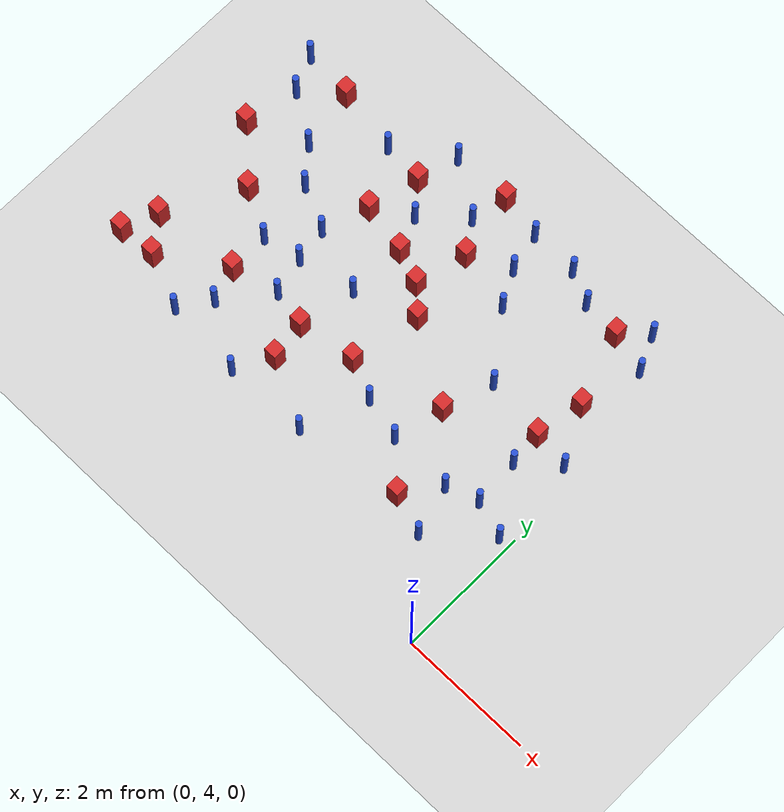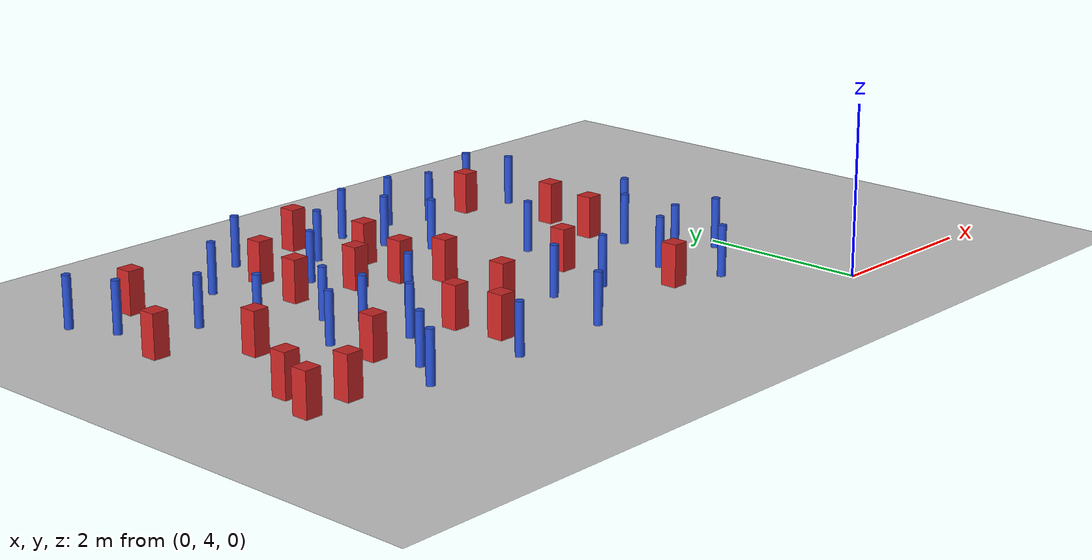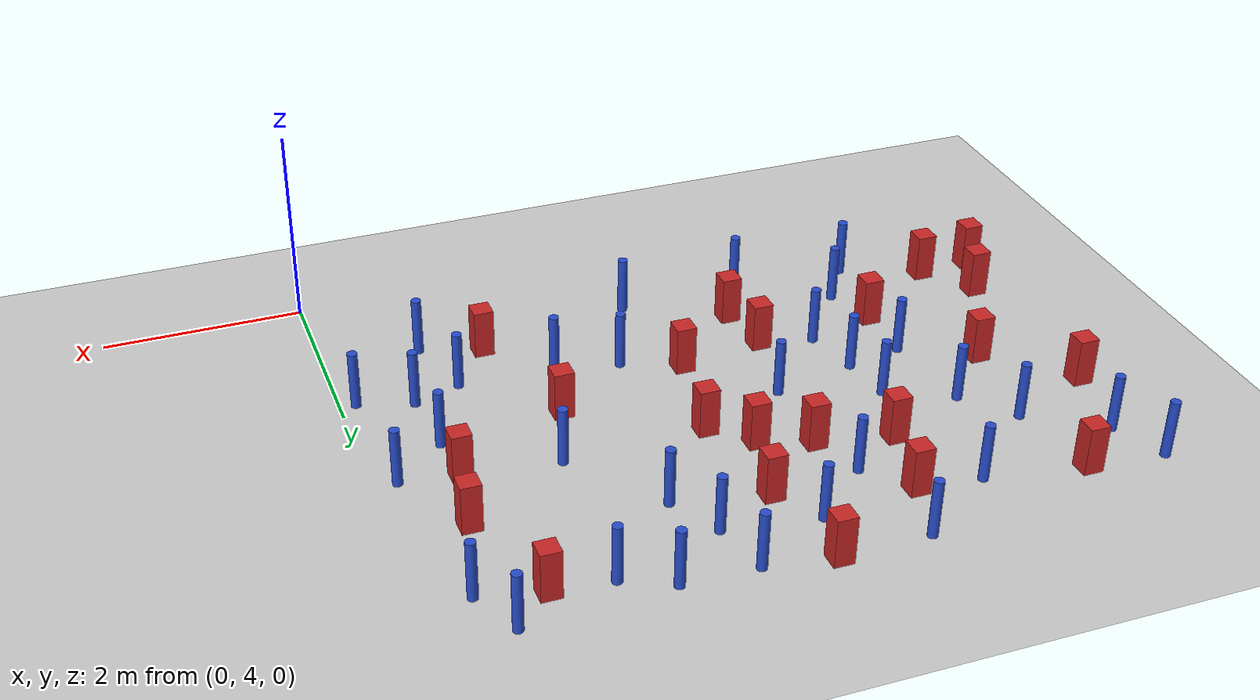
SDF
<sdf version="1.6">
 <world name="default">
  <model name="ground_plane">
   <static>1</static>
   <link name="link">
    <collision name="collision">
     <geometry><plane><normal>0 0 1</normal><size>100 100</size></plane></geometry>
     <surface><friction><ode><mu>100</mu><mu2>50</mu2></ode></friction></surface>
    </collision>
    <visual name="visual">
     <cast_shadows>0</cast_shadows>
     <geometry><plane><normal>0 0 1</normal><size>100 100</size></plane></geometry>
     <material>
      <ambient>1.0 1.0 1.0 1.0</ambient>
      <diffuse>0.8 0.8 0.8 1.0</diffuse>
      <specular>0.01 0.01 0.01 1.000000</specular>
     </material>
    </visual>
   </link>
  </model>
  <model name="square_post_obstacle1">
   <static>true</static>
   <pose>-3.34761404719 6.2799041759 -6.11067671241e-07 -5.50515727128e-06 -8.79689657224e-07 2.37013304536e-05</pose>
   <link name="link">
    <pose>0 0 0.25 0 -0 0</pose>
    <inertial>
     <mass>100</mass>
     <inertia>
      <ixx>0.166667</ixx>
      <ixy>0</ixy>
      <ixz>0</ixz>
      <iyy>0.166667</iyy>
      <iyz>0</iyz>
      <izz>0.166667</izz>
     </inertia>
    </inertial>
    <collision name="collision"><geometry><box><size>.2 .2 .5</size></box></geometry></collision>
    <visual name="visual">
     <geometry><box><size>.2 .2 .5</size></box></geometry>
     <material>
      <script><name>Gazebo/Red</name><uri>file://media/materials/scripts/gazebo.material</uri></script>
     </material>
    </visual>
   </link>
  </model>
  <model name="pole_obstacle0">
   <static>true</static>
   <pose>-2.69258866237 8.78360570163 -9.4761961606e-06 5.49618799729e-07 2.36310414e-07 -1.55090534824e-07</pose>
   <link name="link">
    <pose>0 0 0.3 0 -0 0</pose>
    <inertial>
     <mass>1</mass>
     <inertia><ixx>0.145833</ixx><ixy>0</ixy><ixz>0</ixz><iyy>0.145833</iyy><iyz>0</iyz><izz>0.125</izz></inertia>
    </inertial>
    <collision name="collision">
     <geometry><cylinder><radius>0.05</radius><length>.6</length></cylinder></geometry>
    </collision>
    <visual name="visual">
     <geometry><cylinder><radius>0.05</radius><length>.6</length></cylinder></geometry>
     <material>
      <script><name>Gazebo/Blue</name><uri>file://media/materials/scripts/gazebo.material</uri></script>
     </material>
    </visual>
   </link>
  </model>
  <model name="square_post_obstacle4">
   <static>true</static>
   <pose>-3.31677409163 8.47484214785 -6.11067671241e-07 -5.50515727128e-06 -8.79689657224e-07 2.37013304536e-05</pose>
   <link name="link">
    <pose>0 0 0.25 0 -0 0</pose>
    <inertial>
     <mass>100</mass>
     <inertia>
      <ixx>0.166667</ixx>
      <ixy>0</ixy>
      <ixz>0</ixz>
      <iyy>0.166667</iyy>
      <iyz>0</iyz>
      <izz>0.166667</izz>
     </inertia>
    </inertial>
    <collision name="collision"><geometry><box><size>.2 .2 .5</size></box></geometry></collision>
    <visual name="visual">
     <geometry><box><size>.2 .2 .5</size></box></geometry>
     <material>
      <script><name>Gazebo/Red</name><uri>file://media/materials/scripts/gazebo.material</uri></script>
     </material>
    </visual>
   </link>
  </model>
  <model name="pole_obstacle7">
   <static>true</static>
   <pose>-2.09122257601 9.34044556513 -9.4761961606e-06 5.49618799729e-07 2.36310414e-07 -1.55090534824e-07</pose>
   <link name="link">
    <pose>0 0 0.3 0 -0 0</pose>
    <inertial>
     <mass>1</mass>
     <inertia><ixx>0.145833</ixx><ixy>0</ixy><ixz>0</ixz><iyy>0.145833</iyy><iyz>0</iyz><izz>0.125</izz></inertia>
    </inertial>
    <collision name="collision">
     <geometry><cylinder><radius>0.05</radius><length>.6</length></cylinder></geometry>
    </collision>
    <visual name="visual">
     <geometry><cylinder><radius>0.05</radius><length>.6</length></cylinder></geometry>
     <material>
      <script><name>Gazebo/Blue</name><uri>file://media/materials/scripts/gazebo.material</uri></script>
     </material>
    </visual>
   </link>
  </model>
  <model name="pole_obstacle12">
   <static>true</static>
   <pose>-0.222761955069 7.18345360372 -9.47619616065e-06 5.49618799737e-07 2.36310414064e-07 -1.55090534799e-07</pose>
   <link name="link">
    <pose>0 0 0.3 0 -0 0</pose>
    <inertial>
     <mass>1</mass>
     <inertia><ixx>0.145833</ixx><ixy>0</ixy><ixz>0</ixz><iyy>0.145833</iyy><iyz>0</iyz><izz>0.125</izz></inertia>
    </inertial>
    <collision name="collision">
     <geometry><cylinder><radius>0.05</radius><length>.6</length></cylinder></geometry>
    </collision>
    <visual name="visual">
     <geometry><cylinder><radius>0.05</radius><length>.6</length></cylinder></geometry>
     <material>
      <script><name>Gazebo/Blue</name><uri>file://media/materials/scripts/gazebo.material</uri></script>
     </material>
    </visual>
   </link>
  </model>
  <model name="pole_obstacle13">
   <static>true</static>
   <pose>-4.43546107212 5.02161070864 -9.47619616065e-06 5.49618799737e-07 2.36310414037e-07 -1.55090534814e-07</pose>
   <link name="link">
    <pose>0 0 0.3 0 -0 0</pose>
    <inertial>
     <mass>1</mass>
     <inertia><ixx>0.145833</ixx><ixy>0</ixy><ixz>0</ixz><iyy>0.145833</iyy><iyz>0</iyz><izz>0.125</izz></inertia>
    </inertial>
    <collision name="collision">
     <geometry><cylinder><radius>0.05</radius><length>.6</length></cylinder></geometry>
    </collision>
    <visual name="visual">
     <geometry><cylinder><radius>0.05</radius><length>.6</length></cylinder></geometry>
     <material>
      <script><name>Gazebo/Blue</name><uri>file://media/materials/scripts/gazebo.material</uri></script>
     </material>
    </visual>
   </link>
  </model>
  <model name="pole_obstacle14">
   <static>true</static>
   <pose>-5.64300418187 7.66119199296 -9.47619616065e-06 5.49618799737e-07 2.36310414037e-07 -1.55090534814e-07</pose>
   <link name="link">
    <pose>0 0 0.3 0 -0 0</pose>
    <inertial>
     <mass>1</mass>
     <inertia><ixx>0.145833</ixx><ixy>0</ixy><ixz>0</ixz><iyy>0.145833</iyy><iyz>0</iyz><izz>0.125</izz></inertia>
    </inertial>
    <collision name="collision">
     <geometry><cylinder><radius>0.05</radius><length>.6</length></cylinder></geometry>
    </collision>
    <visual name="visual">
     <geometry><cylinder><radius>0.05</radius><length>.6</length></cylinder></geometry>
     <material>
      <script><name>Gazebo/Blue</name><uri>file://media/materials/scripts/gazebo.material</uri></script>
     </material>
    </visual>
   </link>
  </model>
  <model name="pole_obstacle18">
   <static>true</static>
   <pose>-3.16564307549 5.06302007915 -9.47619616065e-06 5.49618799738e-07 2.3631041406e-07 -1.55090534801e-07</pose>
   <link name="link">
    <pose>0 0 0.3 0 -0 0</pose>
    <inertial>
     <mass>1</mass>
     <inertia><ixx>0.145833</ixx><ixy>0</ixy><ixz>0</ixz><iyy>0.145833</iyy><iyz>0</iyz><izz>0.125</izz></inertia>
    </inertial>
    <collision name="collision">
     <geometry><cylinder><radius>0.05</radius><length>.6</length></cylinder></geometry>
    </collision>
    <visual name="visual">
     <geometry><cylinder><radius>0.05</radius><length>.6</length></cylinder></geometry>
     <material>
      <script><name>Gazebo/Blue</name><uri>file://media/materials/scripts/gazebo.material</uri></script>
     </material>
    </visual>
   </link>
  </model>
  <model name="pole_obstacle21">
   <static>true</static>
   <pose>-0.156886062178 5.84629662768 -9.47619616065e-06 5.49618799737e-07 2.36310414062e-07 -1.550905348e-07</pose>
   <link name="link">
    <pose>0 0 0.3 0 -0 0</pose>
    <inertial>
     <mass>1</mass>
     <inertia><ixx>0.145833</ixx><ixy>0</ixy><ixz>0</ixz><iyy>0.145833</iyy><iyz>0</iyz><izz>0.125</izz></inertia>
    </inertial>
    <collision name="collision">
     <geometry><cylinder><radius>0.05</radius><length>.6</length></cylinder></geometry>
    </collision>
    <visual name="visual">
     <geometry><cylinder><radius>0.05</radius><length>.6</length></cylinder></geometry>
     <material>
      <script><name>Gazebo/Blue</name><uri>file://media/materials/scripts/gazebo.material</uri></script>
     </material>
    </visual>
   </link>
  </model>
  <model name="pole_obstacle23">
   <static>true</static>
   <pose>-3.62183732038 8.9275067447 -9.4761961606e-06 5.49618799729e-07 2.36310414e-07 -1.55090534824e-07</pose>
   <link name="link">
    <pose>0 0 0.3 0 -0 0</pose>
    <inertial>
     <mass>1</mass>
     <inertia><ixx>0.145833</ixx><ixy>0</ixy><ixz>0</ixz><iyy>0.145833</iyy><iyz>0</iyz><izz>0.125</izz></inertia>
    </inertial>
    <collision name="collision">
     <geometry><cylinder><radius>0.05</radius><length>.6</length></cylinder></geometry>
    </collision>
    <visual name="visual">
     <geometry><cylinder><radius>0.05</radius><length>.6</length></cylinder></geometry>
     <material>
      <script><name>Gazebo/Blue</name><uri>file://media/materials/scripts/gazebo.material</uri></script>
     </material>
    </visual>
   </link>
  </model>
  <model name="pole_obstacle29">
   <static>true</static>
   <pose>-5.22662206103 8.88792561754 -9.47619616065e-06 5.49618799737e-07 2.36310414065e-07 -1.55090534796e-07</pose>
   <link name="link">
    <pose>0 0 0.3 0 -0 0</pose>
    <inertial>
     <mass>1</mass>
     <inertia><ixx>0.145833</ixx><ixy>0</ixy><ixz>0</ixz><iyy>0.145833</iyy><iyz>0</iyz><izz>0.125</izz></inertia>
    </inertial>
    <collision name="collision">
     <geometry><cylinder><radius>0.05</radius><length>.6</length></cylinder></geometry>
    </collision>
    <visual name="visual">
     <geometry><cylinder><radius>0.05</radius><length>.6</length></cylinder></geometry>
     <material>
      <script><name>Gazebo/Blue</name><uri>file://media/materials/scripts/gazebo.material</uri></script>
     </material>
    </visual>
   </link>
  </model>
  <model name="square_post_obstacle35">
   <static>true</static>
   <pose>-0.791525722079 7.25611907616 -6.11067671241e-07 -5.50515727128e-06 -8.79689657224e-07 2.37013304536e-05</pose>
   <link name="link">
    <pose>0 0 0.25 0 -0 0</pose>
    <inertial>
     <mass>100</mass>
     <inertia>
      <ixx>0.166667</ixx>
      <ixy>0</ixy>
      <ixz>0</ixz>
      <iyy>0.166667</iyy>
      <iyz>0</iyz>
      <izz>0.166667</izz>
     </inertia>
    </inertial>
    <collision name="collision"><geometry><box><size>.2 .2 .5</size></box></geometry></collision>
    <visual name="visual">
     <geometry><box><size>.2 .2 .5</size></box></geometry>
     <material>
      <script><name>Gazebo/Red</name><uri>file://media/materials/scripts/gazebo.material</uri></script>
     </material>
    </visual>
   </link>
  </model>
  <model name="pole_obstacle35">
   <static>true</static>
   <pose>-4.77619274611 6.25733308094 -9.47619616065e-06 5.49618799737e-07 2.36310414037e-07 -1.55090534814e-07</pose>
   <link name="link">
    <pose>0 0 0.3 0 -0 0</pose>
    <inertial>
     <mass>1</mass>
     <inertia><ixx>0.145833</ixx><ixy>0</ixy><ixz>0</ixz><iyy>0.145833</iyy><iyz>0</iyz><izz>0.125</izz></inertia>
    </inertial>
    <collision name="collision">
     <geometry><cylinder><radius>0.05</radius><length>.6</length></cylinder></geometry>
    </collision>
    <visual name="visual">
     <geometry><cylinder><radius>0.05</radius><length>.6</length></cylinder></geometry>
     <material>
      <script><name>Gazebo/Blue</name><uri>file://media/materials/scripts/gazebo.material</uri></script>
     </material>
    </visual>
   </link>
  </model>
  <model name="pole_obstacle37">
   <static>true</static>
   <pose>-1.73074676715 7.37955289185 -9.47619616065e-06 5.49618799737e-07 2.36310414061e-07 -1.550905348e-07</pose>
   <link name="link">
    <pose>0 0 0.3 0 -0 0</pose>
    <inertial>
     <mass>1</mass>
     <inertia><ixx>0.145833</ixx><ixy>0</ixy><ixz>0</ixz><iyy>0.145833</iyy><iyz>0</iyz><izz>0.125</izz></inertia>
    </inertial>
    <collision name="collision">
     <geometry><cylinder><radius>0.05</radius><length>.6</length></cylinder></geometry>
    </collision>
    <visual name="visual">
     <geometry><cylinder><radius>0.05</radius><length>.6</length></cylinder></geometry>
     <material>
      <script><name>Gazebo/Blue</name><uri>file://media/materials/scripts/gazebo.material</uri></script>
     </material>
    </visual>
   </link>
  </model>
  <model name="square_post_obstacle40">
   <static>true</static>
   <pose>-4.57933291864 8.82480861908 -6.11067671241e-07 -5.50515727128e-06 -8.79689657224e-07 2.37013304536e-05</pose>
   <link name="link">
    <pose>0 0 0.25 0 -0 0</pose>
    <inertial>
     <mass>100</mass>
     <inertia>
      <ixx>0.166667</ixx>
      <ixy>0</ixy>
      <ixz>0</ixz>
      <iyy>0.166667</iyy>
      <iyz>0</iyz>
      <izz>0.166667</izz>
     </inertia>
    </inertial>
    <collision name="collision"><geometry><box><size>.2 .2 .5</size></box></geometry></collision>
    <visual name="visual">
     <geometry><box><size>.2 .2 .5</size></box></geometry>
     <material>
      <script><name>Gazebo/Red</name><uri>file://media/materials/scripts/gazebo.material</uri></script>
     </material>
    </visual>
   </link>
  </model>
  <model name="square_post_obstacle46">
   <static>true</static>
   <pose>-4.22402679997 6.14144851679 -6.11067671241e-07 -5.50515727128e-06 -8.79689657224e-07 2.37013304536e-05</pose>
   <link name="link">
    <pose>0 0 0.25 0 -0 0</pose>
    <inertial>
     <mass>100</mass>
     <inertia>
      <ixx>0.166667</ixx>
      <ixy>0</ixy>
      <ixz>0</ixz>
      <iyy>0.166667</iyy>
      <iyz>0</iyz>
      <izz>0.166667</izz>
     </inertia>
    </inertial>
    <collision name="collision"><geometry><box><size>.2 .2 .5</size></box></geometry></collision>
    <visual name="visual">
     <geometry><box><size>.2 .2 .5</size></box></geometry>
     <material>
      <script><name>Gazebo/Red</name><uri>file://media/materials/scripts/gazebo.material</uri></script>
     </material>
    </visual>
   </link>
  </model>
  <model name="square_post_obstacle48">
   <static>true</static>
   <pose>-1.02834830547 9.06239887328 -6.11067671241e-07 -5.50515727128e-06 -8.79689657224e-07 2.37013304536e-05</pose>
   <link name="link">
    <pose>0 0 0.25 0 -0 0</pose>
    <inertial>
     <mass>100</mass>
     <inertia>
      <ixx>0.166667</ixx>
      <ixy>0</ixy>
      <ixz>0</ixz>
      <iyy>0.166667</iyy>
      <iyz>0</iyz>
      <izz>0.166667</izz>
     </inertia>
    </inertial>
    <collision name="collision"><geometry><box><size>.2 .2 .5</size></box></geometry></collision>
    <visual name="visual">
     <geometry><box><size>.2 .2 .5</size></box></geometry>
     <material>
      <script><name>Gazebo/Red</name><uri>file://media/materials/scripts/gazebo.material</uri></script>
     </material>
    </visual>
   </link>
  </model>
  <model name="square_post_obstacle49">
   <static>true</static>
   <pose>-6.790149546 5.9385222193 -6.11067671241e-07 -5.50515727128e-06 -8.79689657224e-07 2.37013304536e-05</pose>
   <link name="link">
    <pose>0 0 0.25 0 -0 0</pose>
    <inertial>
     <mass>100</mass>
     <inertia>
      <ixx>0.166667</ixx>
      <ixy>0</ixy>
      <ixz>0</ixz>
      <iyy>0.166667</iyy>
      <iyz>0</iyz>
      <izz>0.166667</izz>
     </inertia>
    </inertial>
    <collision name="collision"><geometry><box><size>.2 .2 .5</size></box></geometry></collision>
    <visual name="visual">
     <geometry><box><size>.2 .2 .5</size></box></geometry>
     <material>
      <script><name>Gazebo/Red</name><uri>file://media/materials/scripts/gazebo.material</uri></script>
     </material>
    </visual>
   </link>
  </model>
  <model name="pole_obstacle56">
   <static>true</static>
   <pose>-5.31865604463 5.56865676067 -9.47619616065e-06 5.49618799737e-07 2.36310414037e-07 -1.55090534814e-07</pose>
   <link name="link">
    <pose>0 0 0.3 0 -0 0</pose>
    <inertial>
     <mass>1</mass>
     <inertia><ixx>0.145833</ixx><ixy>0</ixy><ixz>0</ixz><iyy>0.145833</iyy><iyz>0</iyz><izz>0.125</izz></inertia>
    </inertial>
    <collision name="collision">
     <geometry><cylinder><radius>0.05</radius><length>.6</length></cylinder></geometry>
    </collision>
    <visual name="visual">
     <geometry><cylinder><radius>0.05</radius><length>.6</length></cylinder></geometry>
     <material>
      <script><name>Gazebo/Blue</name><uri>file://media/materials/scripts/gazebo.material</uri></script>
     </material>
    </visual>
   </link>
  </model>
  <model name="pole_obstacle58">
   <static>true</static>
   <pose>-0.747678687586 6.73833485369 -9.47619616065e-06 5.49618799737e-07 2.36310414065e-07 -1.55090534796e-07</pose>
   <link name="link">
    <pose>0 0 0.3 0 -0 0</pose>
    <inertial>
     <mass>1</mass>
     <inertia><ixx>0.145833</ixx><ixy>0</ixy><ixz>0</ixz><iyy>0.145833</iyy><iyz>0</iyz><izz>0.125</izz></inertia>
    </inertial>
    <collision name="collision">
     <geometry><cylinder><radius>0.05</radius><length>.6</length></cylinder></geometry>
    </collision>
    <visual name="visual">
     <geometry><cylinder><radius>0.05</radius><length>.6</length></cylinder></geometry>
     <material>
      <script><name>Gazebo/Blue</name><uri>file://media/materials/scripts/gazebo.material</uri></script>
     </material>
    </visual>
   </link>
  </model>
  <model name="pole_obstacle59">
   <static>true</static>
   <pose>-6.99134029611 9.12755700751 -9.47619616065e-06 5.49618799737e-07 2.36310414065e-07 -1.55090534796e-07</pose>
   <link name="link">
    <pose>0 0 0.3 0 -0 0</pose>
    <inertial>
     <mass>1</mass>
     <inertia><ixx>0.145833</ixx><ixy>0</ixy><ixz>0</ixz><iyy>0.145833</iyy><iyz>0</iyz><izz>0.125</izz></inertia>
    </inertial>
    <collision name="collision">
     <geometry><cylinder><radius>0.05</radius><length>.6</length></cylinder></geometry>
    </collision>
    <visual name="visual">
     <geometry><cylinder><radius>0.05</radius><length>.6</length></cylinder></geometry>
     <material>
      <script><name>Gazebo/Blue</name><uri>file://media/materials/scripts/gazebo.material</uri></script>
     </material>
    </visual>
   </link>
  </model>
  <model name="square_post_obstacle67">
   <static>true</static>
   <pose>-4.76457008558 8.04426286051 -6.11067671241e-07 -5.50515727128e-06 -8.79689657224e-07 2.37013304536e-05</pose>
   <link name="link">
    <pose>0 0 0.25 0 -0 0</pose>
    <inertial>
     <mass>100</mass>
     <inertia>
      <ixx>0.166667</ixx>
      <ixy>0</ixy>
      <ixz>0</ixz>
      <iyy>0.166667</iyy>
      <iyz>0</iyz>
      <izz>0.166667</izz>
     </inertia>
    </inertial>
    <collision name="collision"><geometry><box><size>.2 .2 .5</size></box></geometry></collision>
    <visual name="visual">
     <geometry><box><size>.2 .2 .5</size></box></geometry>
     <material>
      <script><name>Gazebo/Red</name><uri>file://media/materials/scripts/gazebo.material</uri></script>
     </material>
    </visual>
   </link>
  </model>
  <model name="pole_obstacle89">
   <static>true</static>
   <pose>-0.419733779048 8.90822560459 -9.47619616065e-06 5.49618799737e-07 2.36310414031e-07 -1.55090534818e-07</pose>
   <link name="link">
    <pose>0 0 0.3 0 -0 0</pose>
    <inertial>
     <mass>1</mass>
     <inertia><ixx>0.145833</ixx><ixy>0</ixy><ixz>0</ixz><iyy>0.145833</iyy><iyz>0</iyz><izz>0.125</izz></inertia>
    </inertial>
    <collision name="collision">
     <geometry><cylinder><radius>0.05</radius><length>.6</length></cylinder></geometry>
    </collision>
    <visual name="visual">
     <geometry><cylinder><radius>0.05</radius><length>.6</length></cylinder></geometry>
     <material>
      <script><name>Gazebo/Blue</name><uri>file://media/materials/scripts/gazebo.material</uri></script>
     </material>
    </visual>
   </link>
  </model>
  <model name="square_post_obstacle84">
   <static>true</static>
   <pose>-0.662428111317 7.98812683587 -6.11067671241e-07 -5.50515727128e-06 -8.79689657224e-07 2.37013304536e-05</pose>
   <link name="link">
    <pose>0 0 0.25 0 -0 0</pose>
    <inertial>
     <mass>100</mass>
     <inertia>
      <ixx>0.166667</ixx>
      <ixy>0</ixy>
      <ixz>0</ixz>
      <iyy>0.166667</iyy>
      <iyz>0</iyz>
      <izz>0.166667</izz>
     </inertia>
    </inertial>
    <collision name="collision"><geometry><box><size>.2 .2 .5</size></box></geometry></collision>
    <visual name="visual">
     <geometry><box><size>.2 .2 .5</size></box></geometry>
     <material>
      <script><name>Gazebo/Red</name><uri>file://media/materials/scripts/gazebo.material</uri></script>
     </material>
    </visual>
   </link>
  </model>
  <model name="pole_obstacle100">
   <static>true</static>
   <pose>-5.49721053842 6.7070391079 -9.47619616065e-06 5.49618799737e-07 2.36310414037e-07 -1.55090534814e-07</pose>
   <link name="link">
    <pose>0 0 0.3 0 -0 0</pose>
    <inertial>
     <mass>1</mass>
     <inertia><ixx>0.145833</ixx><ixy>0</ixy><ixz>0</ixz><iyy>0.145833</iyy><iyz>0</iyz><izz>0.125</izz></inertia>
    </inertial>
    <collision name="collision">
     <geometry><cylinder><radius>0.05</radius><length>.6</length></cylinder></geometry>
    </collision>
    <visual name="visual">
     <geometry><cylinder><radius>0.05</radius><length>.6</length></cylinder></geometry>
     <material>
      <script><name>Gazebo/Blue</name><uri>file://media/materials/scripts/gazebo.material</uri></script>
     </material>
    </visual>
   </link>
  </model>
  <model name="pole_obstacle105">
   <static>true</static>
   <pose>-5.0006823289 7.34446050755 -9.47619616065e-06 5.49618799737e-07 2.36310414037e-07 -1.55090534814e-07</pose>
   <link name="link">
    <pose>0 0 0.3 0 -0 0</pose>
    <inertial>
     <mass>1</mass>
     <inertia><ixx>0.145833</ixx><ixy>0</ixy><ixz>0</ixz><iyy>0.145833</iyy><iyz>0</iyz><izz>0.125</izz></inertia>
    </inertial>
    <collision name="collision">
     <geometry><cylinder><radius>0.05</radius><length>.6</length></cylinder></geometry>
    </collision>
    <visual name="visual">
     <geometry><cylinder><radius>0.05</radius><length>.6</length></cylinder></geometry>
     <material>
      <script><name>Gazebo/Blue</name><uri>file://media/materials/scripts/gazebo.material</uri></script>
     </material>
    </visual>
   </link>
  </model>
  <model name="pole_obstacle106">
   <static>true</static>
   <pose>-6.04563847367 8.13828005987 -9.47619616065e-06 5.49618799737e-07 2.36310414065e-07 -1.55090534796e-07</pose>
   <link name="link">
    <pose>0 0 0.3 0 -0 0</pose>
    <inertial>
     <mass>1</mass>
     <inertia><ixx>0.145833</ixx><ixy>0</ixy><ixz>0</ixz><iyy>0.145833</iyy><iyz>0</iyz><izz>0.125</izz></inertia>
    </inertial>
    <collision name="collision">
     <geometry><cylinder><radius>0.05</radius><length>.6</length></cylinder></geometry>
    </collision>
    <visual name="visual">
     <geometry><cylinder><radius>0.05</radius><length>.6</length></cylinder></geometry>
     <material>
      <script><name>Gazebo/Blue</name><uri>file://media/materials/scripts/gazebo.material</uri></script>
     </material>
    </visual>
   </link>
  </model>
  <model name="square_post_obstacle99">
   <static>true</static>
   <pose>-3.51171656697 7.69116474499 -6.11067671241e-07 -5.50515727128e-06 -8.79689657224e-07 2.37013304536e-05</pose>
   <link name="link">
    <pose>0 0 0.25 0 -0 0</pose>
    <inertial>
     <mass>100</mass>
     <inertia>
      <ixx>0.166667</ixx>
      <ixy>0</ixy>
      <ixz>0</ixz>
      <iyy>0.166667</iyy>
      <iyz>0</iyz>
      <izz>0.166667</izz>
     </inertia>
    </inertial>
    <collision name="collision"><geometry><box><size>.2 .2 .5</size></box></geometry></collision>
    <visual name="visual">
     <geometry><box><size>.2 .2 .5</size></box></geometry>
     <material>
      <script><name>Gazebo/Red</name><uri>file://media/materials/scripts/gazebo.material</uri></script>
     </material>
    </visual>
   </link>
  </model>
  <model name="pole_obstacle119">
   <static>true</static>
   <pose>-6.7570347347 8.60260403112 -9.47619616065e-06 5.49618799737e-07 2.36310414065e-07 -1.55090534796e-07</pose>
   <link name="link">
    <pose>0 0 0.3 0 -0 0</pose>
    <inertial>
     <mass>1</mass>
     <inertia><ixx>0.145833</ixx><ixy>0</ixy><ixz>0</ixz><iyy>0.145833</iyy><iyz>0</iyz><izz>0.125</izz></inertia>
    </inertial>
    <collision name="collision">
     <geometry><cylinder><radius>0.05</radius><length>.6</length></cylinder></geometry>
    </collision>
    <visual name="visual">
     <geometry><cylinder><radius>0.05</radius><length>.6</length></cylinder></geometry>
     <material>
      <script><name>Gazebo/Blue</name><uri>file://media/materials/scripts/gazebo.material</uri></script>
     </material>
    </visual>
   </link>
  </model>
  <model name="pole_obstacle129">
   <static>true</static>
   <pose>-1.17539915056 5.85239068508 -9.47619616065e-06 5.49618799737e-07 2.36310414061e-07 -1.550905348e-07</pose>
   <link name="link">
    <pose>0 0 0.3 0 -0 0</pose>
    <inertial>
     <mass>1</mass>
     <inertia><ixx>0.145833</ixx><ixy>0</ixy><ixz>0</ixz><iyy>0.145833</iyy><iyz>0</iyz><izz>0.125</izz></inertia>
    </inertial>
    <collision name="collision">
     <geometry><cylinder><radius>0.05</radius><length>.6</length></cylinder></geometry>
    </collision>
    <visual name="visual">
     <geometry><cylinder><radius>0.05</radius><length>.6</length></cylinder></geometry>
     <material>
      <script><name>Gazebo/Blue</name><uri>file://media/materials/scripts/gazebo.material</uri></script>
     </material>
    </visual>
   </link>
  </model>
  <model name="pole_obstacle140">
   <static>true</static>
   <pose>-2.83298709296 9.35973502838 -9.4761961606e-06 5.49618799729e-07 2.36310414e-07 -1.55090534824e-07</pose>
   <link name="link">
    <pose>0 0 0.3 0 -0 0</pose>
    <inertial>
     <mass>1</mass>
     <inertia><ixx>0.145833</ixx><ixy>0</ixy><ixz>0</ixz><iyy>0.145833</iyy><iyz>0</iyz><izz>0.125</izz></inertia>
    </inertial>
    <collision name="collision">
     <geometry><cylinder><radius>0.05</radius><length>.6</length></cylinder></geometry>
    </collision>
    <visual name="visual">
     <geometry><cylinder><radius>0.05</radius><length>.6</length></cylinder></geometry>
     <material>
      <script><name>Gazebo/Blue</name><uri>file://media/materials/scripts/gazebo.material</uri></script>
     </material>
    </visual>
   </link>
  </model>
  <model name="pole_obstacle142">
   <static>true</static>
   <pose>-2.78225928757 6.03203643562 -9.47619616065e-06 5.49618799738e-07 2.3631041406e-07 -1.55090534801e-07</pose>
   <link name="link">
    <pose>0 0 0.3 0 -0 0</pose>
    <inertial>
     <mass>1</mass>
     <inertia><ixx>0.145833</ixx><ixy>0</ixy><ixz>0</ixz><iyy>0.145833</iyy><iyz>0</iyz><izz>0.125</izz></inertia>
    </inertial>
    <collision name="collision">
     <geometry><cylinder><radius>0.05</radius><length>.6</length></cylinder></geometry>
    </collision>
    <visual name="visual">
     <geometry><cylinder><radius>0.05</radius><length>.6</length></cylinder></geometry>
     <material>
      <script><name>Gazebo/Blue</name><uri>file://media/materials/scripts/gazebo.material</uri></script>
     </material>
    </visual>
   </link>
  </model>
  <model name="pole_obstacle143">
   <static>true</static>
   <pose>-0.656077950877 9.40981114886 -9.47619616065e-06 5.49618799737e-07 2.36310414038e-07 -1.55090534813e-07</pose>
   <link name="link">
    <pose>0 0 0.3 0 -0 0</pose>
    <inertial>
     <mass>1</mass>
     <inertia><ixx>0.145833</ixx><ixy>0</ixy><ixz>0</ixz><iyy>0.145833</iyy><iyz>0</iyz><izz>0.125</izz></inertia>
    </inertial>
    <collision name="collision">
     <geometry><cylinder><radius>0.05</radius><length>.6</length></cylinder></geometry>
    </collision>
    <visual name="visual">
     <geometry><cylinder><radius>0.05</radius><length>.6</length></cylinder></geometry>
     <material>
      <script><name>Gazebo/Blue</name><uri>file://media/materials/scripts/gazebo.material</uri></script>
     </material>
    </visual>
   </link>
  </model>
  <model name="square_post_obstacle133">
   <static>true</static>
   <pose>-1.97233527034 6.62465622903 -6.11067671241e-07 -5.50515727128e-06 -8.79689657224e-07 2.37013304536e-05</pose>
   <link name="link">
    <pose>0 0 0.25 0 -0 0</pose>
    <inertial>
     <mass>100</mass>
     <inertia>
      <ixx>0.166667</ixx>
      <ixy>0</ixy>
      <ixz>0</ixz>
      <iyy>0.166667</iyy>
      <iyz>0</iyz>
      <izz>0.166667</izz>
     </inertia>
    </inertial>
    <collision name="collision"><geometry><box><size>.2 .2 .5</size></box></geometry></collision>
    <visual name="visual">
     <geometry><box><size>.2 .2 .5</size></box></geometry>
     <material>
      <script><name>Gazebo/Red</name><uri>file://media/materials/scripts/gazebo.material</uri></script>
     </material>
    </visual>
   </link>
  </model>
  <model name="pole_obstacle144">
   <static>true</static>
   <pose>-2.41904022946 8.27643759763 -9.4761961606e-06 5.49618799729e-07 2.36310414e-07 -1.55090534824e-07</pose>
   <link name="link">
    <pose>0 0 0.3 0 -0 0</pose>
    <inertial>
     <mass>1</mass>
     <inertia><ixx>0.145833</ixx><ixy>0</ixy><ixz>0</ixz><iyy>0.145833</iyy><iyz>0</iyz><izz>0.125</izz></inertia>
    </inertial>
    <collision name="collision">
     <geometry><cylinder><radius>0.05</radius><length>.6</length></cylinder></geometry>
    </collision>
    <visual name="visual">
     <geometry><cylinder><radius>0.05</radius><length>.6</length></cylinder></geometry>
     <material>
      <script><name>Gazebo/Blue</name><uri>file://media/materials/scripts/gazebo.material</uri></script>
     </material>
    </visual>
   </link>
  </model>
  <model name="square_post_obstacle134">
   <static>true</static>
   <pose>-6.91712557917 7.77467424972 -6.11067671241e-07 -5.50515727128e-06 -8.79689657224e-07 2.37013304536e-05</pose>
   <link name="link">
    <pose>0 0 0.25 0 -0 0</pose>
    <inertial>
     <mass>100</mass>
     <inertia>
      <ixx>0.166667</ixx>
      <ixy>0</ixy>
      <ixz>0</ixz>
      <iyy>0.166667</iyy>
      <iyz>0</iyz>
      <izz>0.166667</izz>
     </inertia>
    </inertial>
    <collision name="collision"><geometry><box><size>.2 .2 .5</size></box></geometry></collision>
    <visual name="visual">
     <geometry><box><size>.2 .2 .5</size></box></geometry>
     <material>
      <script><name>Gazebo/Red</name><uri>file://media/materials/scripts/gazebo.material</uri></script>
     </material>
    </visual>
   </link>
  </model>
  <model name="square_post_obstacle136">
   <static>true</static>
   <pose>-1.57121477423 5.32500261644 -6.11067671241e-07 -5.50515727128e-06 -8.79689657224e-07 2.37013304536e-05</pose>
   <link name="link">
    <pose>0 0 0.25 0 -0 0</pose>
    <inertial>
     <mass>100</mass>
     <inertia>
      <ixx>0.166667</ixx>
      <ixy>0</ixy>
      <ixz>0</ixz>
      <iyy>0.166667</iyy>
      <iyz>0</iyz>
      <izz>0.166667</izz>
     </inertia>
    </inertial>
    <collision name="collision"><geometry><box><size>.2 .2 .5</size></box></geometry></collision>
    <visual name="visual">
     <geometry><box><size>.2 .2 .5</size></box></geometry>
     <material>
      <script><name>Gazebo/Red</name><uri>file://media/materials/scripts/gazebo.material</uri></script>
     </material>
    </visual>
   </link>
  </model>
  <model name="square_post_obstacle139">
   <static>true</static>
   <pose>-4.01510144055 7.88512058055 -6.11067671241e-07 -5.50515727128e-06 -8.79689657224e-07 2.37013304536e-05</pose>
   <link name="link">
    <pose>0 0 0.25 0 -0 0</pose>
    <inertial>
     <mass>100</mass>
     <inertia>
      <ixx>0.166667</ixx>
      <ixy>0</ixy>
      <ixz>0</ixz>
      <iyy>0.166667</iyy>
      <iyz>0</iyz>
      <izz>0.166667</izz>
     </inertia>
    </inertial>
    <collision name="collision"><geometry><box><size>.2 .2 .5</size></box></geometry></collision>
    <visual name="visual">
     <geometry><box><size>.2 .2 .5</size></box></geometry>
     <material>
      <script><name>Gazebo/Red</name><uri>file://media/materials/scripts/gazebo.material</uri></script>
     </material>
    </visual>
   </link>
  </model>
  <model name="square_post_obstacle140">
   <static>true</static>
   <pose>-3.14945478538 7.3459969053 -6.11067671241e-07 -5.50515727128e-06 -8.79689657224e-07 2.37013304536e-05</pose>
   <link name="link">
    <pose>0 0 0.25 0 -0 0</pose>
    <inertial>
     <mass>100</mass>
     <inertia>
      <ixx>0.166667</ixx>
      <ixy>0</ixy>
      <ixz>0</ixz>
      <iyy>0.166667</iyy>
      <iyz>0</iyz>
      <izz>0.166667</izz>
     </inertia>
    </inertial>
    <collision name="collision"><geometry><box><size>.2 .2 .5</size></box></geometry></collision>
    <visual name="visual">
     <geometry><box><size>.2 .2 .5</size></box></geometry>
     <material>
      <script><name>Gazebo/Red</name><uri>file://media/materials/scripts/gazebo.material</uri></script>
     </material>
    </visual>
   </link>
  </model>
  <model name="pole_obstacle153">
   <static>true</static>
   <pose>-4.05499809518 7.00582172801 -9.47619616065e-06 5.49618799737e-07 2.36310414037e-07 -1.55090534814e-07</pose>
   <link name="link">
    <pose>0 0 0.3 0 -0 0</pose>
    <inertial>
     <mass>1</mass>
     <inertia><ixx>0.145833</ixx><ixy>0</ixy><ixz>0</ixz><iyy>0.145833</iyy><iyz>0</iyz><izz>0.125</izz></inertia>
    </inertial>
    <collision name="collision">
     <geometry><cylinder><radius>0.05</radius><length>.6</length></cylinder></geometry>
    </collision>
    <visual name="visual">
     <geometry><cylinder><radius>0.05</radius><length>.6</length></cylinder></geometry>
     <material>
      <script><name>Gazebo/Blue</name><uri>file://media/materials/scripts/gazebo.material</uri></script>
     </material>
    </visual>
   </link>
  </model>
  <model name="pole_obstacle162">
   <static>true</static>
   <pose>-2.14986202657 5.87368042148 -9.47619616065e-06 5.49618799738e-07 2.3631041406e-07 -1.55090534801e-07</pose>
   <link name="link">
    <pose>0 0 0.3 0 -0 0</pose>
    <inertial>
     <mass>1</mass>
     <inertia><ixx>0.145833</ixx><ixy>0</ixy><ixz>0</ixz><iyy>0.145833</iyy><iyz>0</iyz><izz>0.125</izz></inertia>
    </inertial>
    <collision name="collision">
     <geometry><cylinder><radius>0.05</radius><length>.6</length></cylinder></geometry>
    </collision>
    <visual name="visual">
     <geometry><cylinder><radius>0.05</radius><length>.6</length></cylinder></geometry>
     <material>
      <script><name>Gazebo/Blue</name><uri>file://media/materials/scripts/gazebo.material</uri></script>
     </material>
    </visual>
   </link>
  </model>
  <model name="square_post_obstacle157">
   <static>true</static>
   <pose>-5.47899539438 6.07987944975 -6.11067671241e-07 -5.50515727128e-06 -8.79689657224e-07 2.37013304536e-05</pose>
   <link name="link">
    <pose>0 0 0.25 0 -0 0</pose>
    <inertial>
     <mass>100</mass>
     <inertia>
      <ixx>0.166667</ixx>
      <ixy>0</ixy>
      <ixz>0</ixz>
      <iyy>0.166667</iyy>
      <iyz>0</iyz>
      <izz>0.166667</izz>
     </inertia>
    </inertial>
    <collision name="collision"><geometry><box><size>.2 .2 .5</size></box></geometry></collision>
    <visual name="visual">
     <geometry><box><size>.2 .2 .5</size></box></geometry>
     <material>
      <script><name>Gazebo/Red</name><uri>file://media/materials/scripts/gazebo.material</uri></script>
     </material>
    </visual>
   </link>
  </model>
  <model name="pole_obstacle168">
   <static>true</static>
   <pose>-4.91534250382 6.82238257005 -9.47619616065e-06 5.49618799737e-07 2.36310414037e-07 -1.55090534814e-07</pose>
   <link name="link">
    <pose>0 0 0.3 0 -0 0</pose>
    <inertial>
     <mass>1</mass>
     <inertia><ixx>0.145833</ixx><ixy>0</ixy><ixz>0</ixz><iyy>0.145833</iyy><iyz>0</iyz><izz>0.125</izz></inertia>
    </inertial>
    <collision name="collision">
     <geometry><cylinder><radius>0.05</radius><length>.6</length></cylinder></geometry>
    </collision>
    <visual name="visual">
     <geometry><cylinder><radius>0.05</radius><length>.6</length></cylinder></geometry>
     <material>
      <script><name>Gazebo/Blue</name><uri>file://media/materials/scripts/gazebo.material</uri></script>
     </material>
    </visual>
   </link>
  </model>
  <model name="square_post_obstacle162">
   <static>true</static>
   <pose>-6.42129342485 5.44842920974 -6.11067671241e-07 -5.50515727128e-06 -8.79689657224e-07 2.37013304536e-05</pose>
   <link name="link">
    <pose>0 0 0.25 0 -0 0</pose>
    <inertial>
     <mass>100</mass>
     <inertia>
      <ixx>0.166667</ixx>
      <ixy>0</ixy>
      <ixz>0</ixz>
      <iyy>0.166667</iyy>
      <iyz>0</iyz>
      <izz>0.166667</izz>
     </inertia>
    </inertial>
    <collision name="collision"><geometry><box><size>.2 .2 .5</size></box></geometry></collision>
    <visual name="visual">
     <geometry><box><size>.2 .2 .5</size></box></geometry>
     <material>
      <script><name>Gazebo/Red</name><uri>file://media/materials/scripts/gazebo.material</uri></script>
     </material>
    </visual>
   </link>
  </model>
  <model name="square_post_obstacle167">
   <static>true</static>
   <pose>-6.2128182879 9.05477099876 -6.11067671241e-07 -5.50515727128e-06 -8.79689657224e-07 2.37013304536e-05</pose>
   <link name="link">
    <pose>0 0 0.25 0 -0 0</pose>
    <inertial>
     <mass>100</mass>
     <inertia>
      <ixx>0.166667</ixx>
      <ixy>0</ixy>
      <ixz>0</ixz>
      <iyy>0.166667</iyy>
      <iyz>0</iyz>
      <izz>0.166667</izz>
     </inertia>
    </inertial>
    <collision name="collision"><geometry><box><size>.2 .2 .5</size></box></geometry></collision>
    <visual name="visual">
     <geometry><box><size>.2 .2 .5</size></box></geometry>
     <material>
      <script><name>Gazebo/Red</name><uri>file://media/materials/scripts/gazebo.material</uri></script>
     </material>
    </visual>
   </link>
  </model>
  <model name="square_post_obstacle169">
   <static>true</static>
   <pose>-6.18158126765 7.07968899475 -6.11067671241e-07 -5.50515727128e-06 -8.79689657224e-07 2.37013304536e-05</pose>
   <link name="link">
    <pose>0 0 0.25 0 -0 0</pose>
    <inertial>
     <mass>100</mass>
     <inertia>
      <ixx>0.166667</ixx>
      <ixy>0</ixy>
      <ixz>0</ixz>
      <iyy>0.166667</iyy>
      <iyz>0</iyz>
      <izz>0.166667</izz>
     </inertia>
    </inertial>
    <collision name="collision"><geometry><box><size>.2 .2 .5</size></box></geometry></collision>
    <visual name="visual">
     <geometry><box><size>.2 .2 .5</size></box></geometry>
     <material>
      <script><name>Gazebo/Red</name><uri>file://media/materials/scripts/gazebo.material</uri></script>
     </material>
    </visual>
   </link>
  </model>
  <model name="square_post_obstacle172">
   <static>true</static>
   <pose>-6.99592531314 5.41079204266 -6.11067671241e-07 -5.50515727128e-06 -8.79689657224e-07 2.37013304536e-05</pose>
   <link name="link">
    <pose>0 0 0.25 0 -0 0</pose>
    <inertial>
     <mass>100</mass>
     <inertia>
      <ixx>0.166667</ixx>
      <ixy>0</ixy>
      <ixz>0</ixz>
      <iyy>0.166667</iyy>
      <iyz>0</iyz>
      <izz>0.166667</izz>
     </inertia>
    </inertial>
    <collision name="collision"><geometry><box><size>.2 .2 .5</size></box></geometry></collision>
    <visual name="visual">
     <geometry><box><size>.2 .2 .5</size></box></geometry>
     <material>
      <script><name>Gazebo/Red</name><uri>file://media/materials/scripts/gazebo.material</uri></script>
     </material>
    </visual>
   </link>
  </model>
  <model name="square_post_obstacle173">
   <static>true</static>
   <pose>-3.50305772142 9.47226713621 -6.11067671241e-07 -5.50515727128e-06 -8.79689657224e-07 2.37013304536e-05</pose>
   <link name="link">
    <pose>0 0 0.25 0 -0 0</pose>
    <inertial>
     <mass>100</mass>
     <inertia>
      <ixx>0.166667</ixx>
      <ixy>0</ixy>
      <ixz>0</ixz>
      <iyy>0.166667</iyy>
      <iyz>0</iyz>
      <izz>0.166667</izz>
     </inertia>
    </inertial>
    <collision name="collision"><geometry><box><size>.2 .2 .5</size></box></geometry></collision>
    <visual name="visual">
     <geometry><box><size>.2 .2 .5</size></box></geometry>
     <material>
      <script><name>Gazebo/Red</name><uri>file://media/materials/scripts/gazebo.material</uri></script>
     </material>
    </visual>
   </link>
  </model>
  <model name="pole_obstacle193">
   <static>true</static>
   <pose>-4.40453249084 9.45489898601 -9.47619616065e-06 5.49618799737e-07 2.36310414065e-07 -1.55090534796e-07</pose>
   <link name="link">
    <pose>0 0 0.3 0 -0 0</pose>
    <inertial>
     <mass>1</mass>
     <inertia><ixx>0.145833</ixx><ixy>0</ixy><ixz>0</ixz><iyy>0.145833</iyy><iyz>0</iyz><izz>0.125</izz></inertia>
    </inertial>
    <collision name="collision">
     <geometry><cylinder><radius>0.05</radius><length>.6</length></cylinder></geometry>
    </collision>
    <visual name="visual">
     <geometry><cylinder><radius>0.05</radius><length>.6</length></cylinder></geometry>
     <material>
      <script><name>Gazebo/Blue</name><uri>file://media/materials/scripts/gazebo.material</uri></script>
     </material>
    </visual>
   </link>
  </model>
  <model name="square_post_obstacle194">
   <static>true</static>
   <pose>-4.13385948119 5.5642861403 -6.11067671241e-07 -5.50515727128e-06 -8.79689657224e-07 2.37013304536e-05</pose>
   <link name="link">
    <pose>0 0 0.25 0 -0 0</pose>
    <inertial>
     <mass>100</mass>
     <inertia>
      <ixx>0.166667</ixx>
      <ixy>0</ixy>
      <ixz>0</ixz>
      <iyy>0.166667</iyy>
      <iyz>0</iyz>
      <izz>0.166667</izz>
     </inertia>
    </inertial>
    <collision name="collision"><geometry><box><size>.2 .2 .5</size></box></geometry></collision>
    <visual name="visual">
     <geometry><box><size>.2 .2 .5</size></box></geometry>
     <material>
      <script><name>Gazebo/Red</name><uri>file://media/materials/scripts/gazebo.material</uri></script>
     </material>
    </visual>
   </link>
  </model>
  <model name="pole_obstacle204">
   <static>true</static>
   <pose>-4.21939107848 8.39525802898 -9.47619616065e-06 5.49618799737e-07 2.36310414065e-07 -1.55090534796e-07</pose>
   <link name="link">
    <pose>0 0 0.3 0 -0 0</pose>
    <inertial>
     <mass>1</mass>
     <inertia><ixx>0.145833</ixx><ixy>0</ixy><ixz>0</ixz><iyy>0.145833</iyy><iyz>0</iyz><izz>0.125</izz></inertia>
    </inertial>
    <collision name="collision">
     <geometry><cylinder><radius>0.05</radius><length>.6</length></cylinder></geometry>
    </collision>
    <visual name="visual">
     <geometry><cylinder><radius>0.05</radius><length>.6</length></cylinder></geometry>
     <material>
      <script><name>Gazebo/Blue</name><uri>file://media/materials/scripts/gazebo.material</uri></script>
     </material>
    </visual>
   </link>
  </model>
  <model name="pole_obstacle217">
   <static>true</static>
   <pose>-0.968398194832 5.12112406973 -9.47619616065e-06 5.49618799737e-07 2.36310414066e-07 -1.55090534796e-07</pose>
   <link name="link">
    <pose>0 0 0.3 0 -0 0</pose>
    <inertial>
     <mass>1</mass>
     <inertia><ixx>0.145833</ixx><ixy>0</ixy><ixz>0</ixz><iyy>0.145833</iyy><iyz>0</iyz><izz>0.125</izz></inertia>
    </inertial>
    <collision name="collision">
     <geometry><cylinder><radius>0.05</radius><length>.6</length></cylinder></geometry>
    </collision>
    <visual name="visual">
     <geometry><cylinder><radius>0.05</radius><length>.6</length></cylinder></geometry>
     <material>
      <script><name>Gazebo/Blue</name><uri>file://media/materials/scripts/gazebo.material</uri></script>
     </material>
    </visual>
   </link>
  </model>
  <model name="pole_obstacle219">
   <static>true</static>
   <pose>-0.695263556019 6.01920956052 -9.47619616065e-06 5.49618799737e-07 2.36310414065e-07 -1.55090534796e-07</pose>
   <link name="link">
    <pose>0 0 0.3 0 -0 0</pose>
    <inertial>
     <mass>1</mass>
     <inertia><ixx>0.145833</ixx><ixy>0</ixy><ixz>0</ixz><iyy>0.145833</iyy><iyz>0</iyz><izz>0.125</izz></inertia>
    </inertial>
    <collision name="collision">
     <geometry><cylinder><radius>0.05</radius><length>.6</length></cylinder></geometry>
    </collision>
    <visual name="visual">
     <geometry><cylinder><radius>0.05</radius><length>.6</length></cylinder></geometry>
     <material>
      <script><name>Gazebo/Blue</name><uri>file://media/materials/scripts/gazebo.material</uri></script>
     </material>
    </visual>
   </link>
  </model>
  <model name="pole_obstacle229">
   <static>true</static>
   <pose>-5.63536547282 5.10922952767 -9.47619616065e-06 5.49618799737e-07 2.36310414037e-07 -1.55090534814e-07</pose>
   <link name="link">
    <pose>0 0 0.3 0 -0 0</pose>
    <inertial>
     <mass>1</mass>
     <inertia><ixx>0.145833</ixx><ixy>0</ixy><ixz>0</ixz><iyy>0.145833</iyy><iyz>0</iyz><izz>0.125</izz></inertia>
    </inertial>
    <collision name="collision">
     <geometry><cylinder><radius>0.05</radius><length>.6</length></cylinder></geometry>
    </collision>
    <visual name="visual">
     <geometry><cylinder><radius>0.05</radius><length>.6</length></cylinder></geometry>
     <material>
      <script><name>Gazebo/Blue</name><uri>file://media/materials/scripts/gazebo.material</uri></script>
     </material>
    </visual>
   </link>
  </model>
  <model name="pole_obstacle231">
   <static>true</static>
   <pose>-1.61866684967 9.11387204395 -9.47619616065e-06 5.49618799737e-07 2.36310414046e-07 -1.55090534809e-07</pose>
   <link name="link">
    <pose>0 0 0.3 0 -0 0</pose>
    <inertial>
     <mass>1</mass>
     <inertia><ixx>0.145833</ixx><ixy>0</ixy><ixz>0</ixz><iyy>0.145833</iyy><iyz>0</iyz><izz>0.125</izz></inertia>
    </inertial>
    <collision name="collision">
     <geometry><cylinder><radius>0.05</radius><length>.6</length></cylinder></geometry>
    </collision>
    <visual name="visual">
     <geometry><cylinder><radius>0.05</radius><length>.6</length></cylinder></geometry>
     <material>
      <script><name>Gazebo/Blue</name><uri>file://media/materials/scripts/gazebo.material</uri></script>
     </material>
    </visual>
   </link>
  </model>
 </world>
</sdf>
